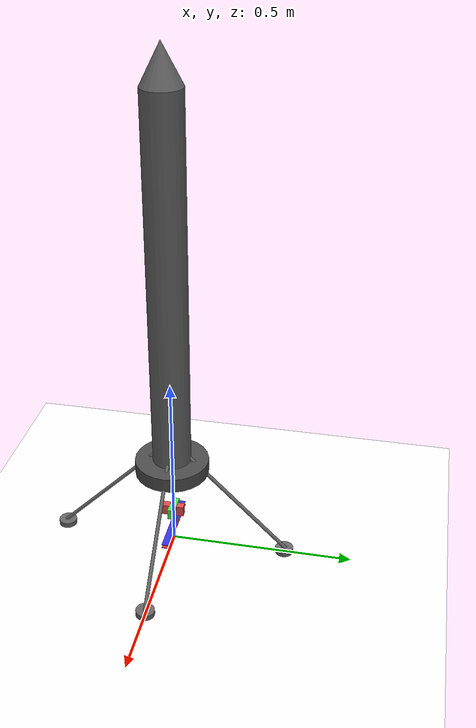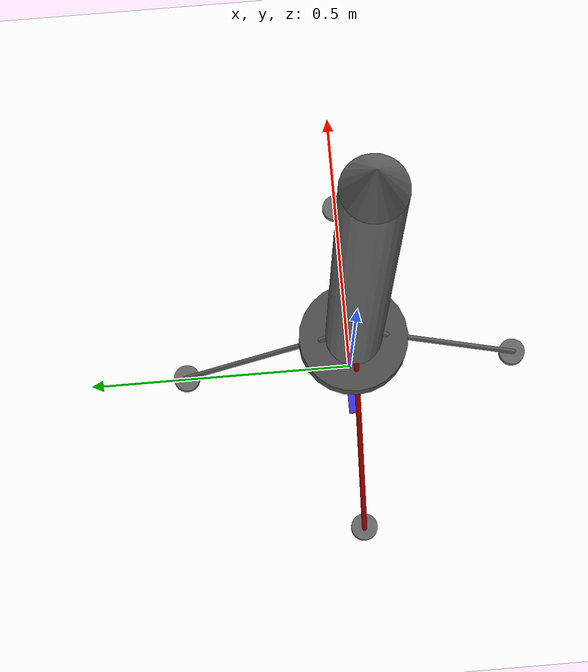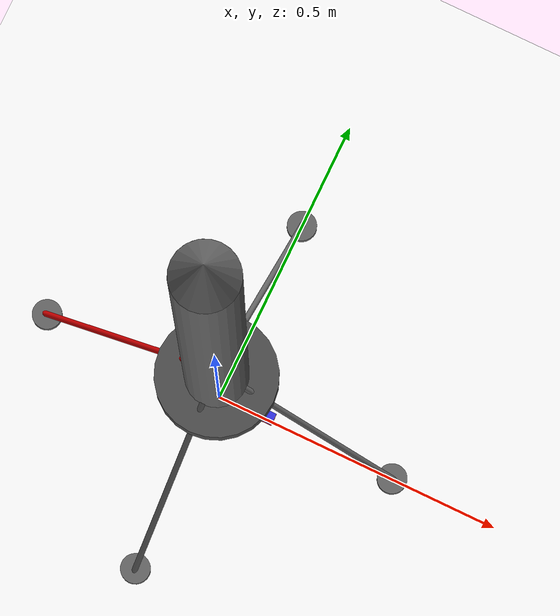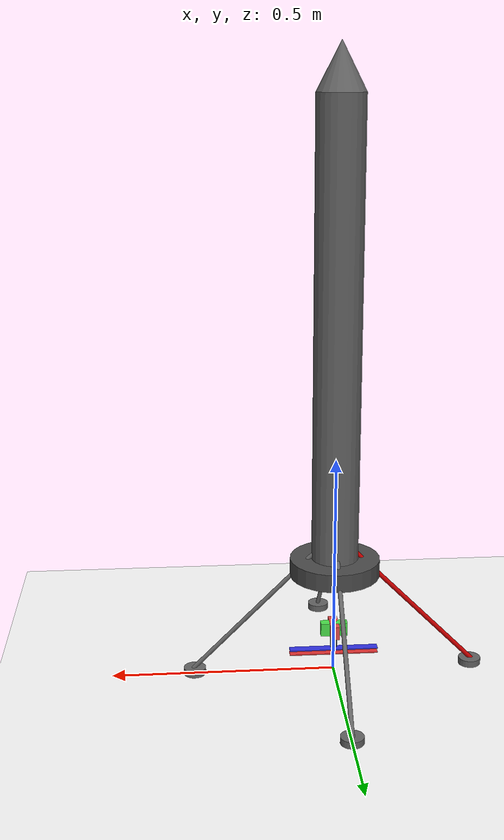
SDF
<?xml version='1.0'?>
<sdf version='1.11'>
  <world name='viper_world'>
    <!-- Inline static ground plane so the world does not depend on external models -->
    <model name='ground_plane_inline'>
      <static>true</static>
      <link name='ground_link'>
        <pose>0 0 0 0 0 0</pose>
        <collision name='ground_collision'>
          <geometry>
            <plane>
              <normal>0 0 1</normal>
              <size>100 100</size>
            </plane>
          </geometry>
        </collision>
        <visual name='ground_visual'>
          <geometry>
            <plane>
              <normal>0 0 1</normal>
              <size>100 100</size>
            </plane>
          </geometry>
          <material>
            <ambient>1 1 1 1</ambient>
            <diffuse>1 1 1 1</diffuse>
          </material>
        </visual>
      </link>
    </model>

    <!-- Include the local viper model by absolute file URI. Update this path if your workspace moves. -->
    <include>
      <uri>file:///home/nk/workspace/nautilus/PX4v1.16.0/Tools/simulation/gz/models/viper/model.sdf</uri>
    </include>

    <!-- World gravity should be set on the world, not inside the physics block -->
    <gravity>0 0 -9.81</gravity>
    <physics name='default_physics' type='ode'/>
  </world>
</sdf>

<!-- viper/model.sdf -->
<sdf version="1.11">
  <model name="viper">
    <link name="base_link">
      <pose>0 0 0.7725 0 0 0</pose>
      <inertial>
        <mass>0.8</mass>
        <pose>0 0 0 0 0 0</pose>
        <inertia>
          <ixx>0.042</ixx>
          <iyy>0.042</iyy>
          <izz>0.0001</izz>
          <ixy>0</ixy>
          <ixz>0</ixz>
          <iyz>0</iyz>
        </inertia>
      </inertial>

      <visual name="body_visual">
        <geometry>
          <cylinder>
            <radius>0.052</radius>
            <length>1.0</length>
          </cylinder>
        </geometry>
        <material>
          <ambient>0.2 0.2 0.2 1</ambient>
          <diffuse>0.4 0.4 0.4 1</diffuse>
          <specular>0.1 0.1 0.1 1</specular>
        </material>
      </visual>

      <collision name="body_collision">
        <geometry>
          <cylinder>
            <radius>0.052</radius>
            <length>1.0</length>
          </cylinder>
        </geometry>
      </collision>

      <sensor name="imu_sensor" type="imu">
        <always_on>1</always_on>
        <update_rate>250</update_rate>
        <pose>0 0 0 0 0 0</pose>
        <visualize>1</visualize>
        <imu>
          <angular_velocity>
            <x>
              <noise type="gaussian">
                <mean>0</mean>
                <stddev>0.0001</stddev>
                <dynamic_bias_stddev>1e-05</dynamic_bias_stddev>
                <dynamic_bias_correlation_time>1000</dynamic_bias_correlation_time>
              </noise>
            </x>
            <y>
              <noise type="gaussian">
                <mean>0</mean>
                <stddev>0.0001</stddev>
                <dynamic_bias_stddev>1e-05</dynamic_bias_stddev>
                <dynamic_bias_correlation_time>1000</dynamic_bias_correlation_time>
              </noise>
            </y>
            <z>
              <noise type="gaussian">
                <mean>0</mean>
                <stddev>0.00001</stddev>
                <dynamic_bias_stddev>1e-05</dynamic_bias_stddev>
                <dynamic_bias_correlation_time>1000</dynamic_bias_correlation_time>
              </noise>
            </z>
          </angular_velocity>
          <linear_acceleration>
            <x>
              <noise type="gaussian">
                <mean>0</mean>
                <stddev>0.001</stddev>
                <dynamic_bias_stddev>0.001</dynamic_bias_stddev>
                <dynamic_bias_correlation_time>300</dynamic_bias_correlation_time>
              </noise>
            </x>
            <y>
              <noise type="gaussian">
                <mean>0</mean>
                <stddev>0.001</stddev>
                <dynamic_bias_stddev>0.001</dynamic_bias_stddev>
                <dynamic_bias_correlation_time>300</dynamic_bias_correlation_time>
              </noise>
            </y>
            <z>
              <noise type="gaussian">
                <mean>0</mean>
                <stddev>0.0001</stddev>
                <dynamic_bias_stddev>0.0001</dynamic_bias_stddev>
                <dynamic_bias_correlation_time>300</dynamic_bias_correlation_time>
              </noise>
            </z>
          </linear_acceleration>
        </imu>
      </sensor>

      <sensor name="air_pressure_sensor" type="air_pressure">
        <always_on>1</always_on>
        <update_rate>50</update_rate>
        <air_pressure>
          <pressure>
            <noise type="gaussian">
              <mean>0</mean>
              <stddev>0.01</stddev>
            </noise>
          </pressure>
        </air_pressure>
      </sensor>

      <sensor name="navsat_sensor" type="navsat">
        <always_on>1</always_on>
        <update_rate>30</update_rate>
      </sensor>

    </link>

    <link name="top_cone">
      <pose>0 0 1.3225 0 0 0</pose>
      <inertial>
        <mass>0.01</mass>
        <inertia>
          <ixx>1e-5</ixx>
          <iyy>1e-5</iyy>
          <izz>1e-5</izz>
          <ixy>0</ixy>
          <ixz>0</ixz>
          <iyz>0</iyz>
        </inertia>
      </inertial>

      <visual name="top_cone_visual">
        <geometry>
          <cone>
            <radius>0.052</radius>
            <length>0.1</length>
          </cone>
        </geometry>
        <material>
          <ambient>0.2 0.2 0.2 1</ambient>
          <diffuse>0.4 0.4 0.4 1</diffuse>
        </material>
      </visual>

      <collision name="top_cone_collision">
        <geometry>
          <cone>
            <radius>0.052</radius>
            <length>0.1</length>
          </cone>
        </geometry>
      </collision>
    </link>

    <link name="gimbal_mount">
      <pose>0 0 0.2525 0 0 0</pose>
      <inertial>
        <mass>0.005</mass>
        <inertia>
          <ixx>1e-5</ixx>
          <iyy>1e-5</iyy>
          <izz>1e-5</izz>
          <ixy>0</ixy>
          <ixz>0</ixz>
          <iyz>0</iyz>
        </inertia>
      </inertial>

      <visual name="gimbal_mount_visual">
        <geometry>
          <cylinder>
            <radius>0.10</radius>
            <length>0.04</length>
          </cylinder>
        </geometry>
        <material>
          <ambient>0.1 0.1 0.1 1</ambient>
          <diffuse>0.3 0.3 0.3 1</diffuse>
        </material>
      </visual>

      <collision name="gimbal_mount_collision">
        <geometry>
          <cylinder>
            <radius>0.10</radius>
            <length>0.04</length>
          </cylinder>
        </geometry>
      </collision>
    </link>

    <link name="servo0_roll">
      <pose>0 0 0.1 0 0 0</pose>
      <inertial>
        <mass>0.003</mass>
        <inertia>
          <ixx>1e-5</ixx>
          <iyy>1e-5</iyy>
          <izz>1e-5</izz>
          <ixy>0</ixy>
          <ixz>0</ixz>
          <iyz>0</iyz>
        </inertia>
      </inertial>

      <visual name="servo0_roll_visual">
        <geometry>
          <box>
            <size>0.02 0.06 0.03</size>
          </box>
        </geometry>
        <material>
          <ambient>0.8 0.2 0.2 1</ambient>
          <diffuse>0.9 0.3 0.3 1</diffuse>
        </material>
      </visual>

      <collision name="servo0_roll_collision">
        <geometry>
          <box>
            <size>0.02 0.06 0.03</size>
          </box>
        </geometry>
      </collision>
    </link>

    <link name="servo1_pitch">
      <pose>0 0 0.1 0 0 0</pose>
      <inertial>
        <mass>0.003</mass>
        <inertia>
          <ixx>1e-5</ixx>
          <iyy>1e-5</iyy>
          <izz>1e-5</izz>
          <ixy>0</ixy>
          <ixz>0</ixz>
          <iyz>0</iyz>
        </inertia>
      </inertial>

      <visual name="servo1_pitch_visual">
        <geometry>
          <box>
            <size>0.06 0.02 0.03</size>
          </box>
        </geometry>
        <material>
          <ambient>0.2 0.8 0.2 1</ambient>
          <diffuse>0.3 0.9 0.3 1</diffuse>
        </material>
      </visual>

      <collision name="servo1_pitch_collision">
        <geometry>
          <box>
            <size>0.06 0.02 0.03</size>
          </box>
        </geometry>
      </collision>
    </link>

    <link name="motor_housing">
      <pose>0 0 0.075 0 0 0</pose>
      <inertial>
        <mass>0.01</mass>
        <inertia>
          <ixx>1e-5</ixx>
          <iyy>1e-5</iyy>
          <izz>1e-5</izz>
          <ixy>0</ixy>
          <ixz>0</ixz>
          <iyz>0</iyz>
        </inertia>
      </inertial>

      <visual name="motor_housing_visual">
        <geometry>
          <cylinder>
            <radius>0.008</radius>
            <length>0.04</length>
          </cylinder>
        </geometry>
        <material>
          <ambient>0.1 0.1 0.1 1</ambient>
          <diffuse>0.2 0.2 0.2 1</diffuse>
        </material>
      </visual>

      <collision name="motor_housing_collision">
        <geometry>
          <cylinder>
            <radius>0.008</radius>
            <length>0.04</length>
          </cylinder>
        </geometry>
      </collision>
    </link>

    <link name="prop_upper">
      <pose>0 0 0.05 0 0 0</pose>
      <inertial>
        <mass>0.001</mass>
        <inertia>
          <ixx>1e-5</ixx>
          <iyy>1e-4</iyy>
          <izz>1e-4</izz>
          <ixy>0</ixy>
          <ixz>0</ixz>
          <iyz>0</iyz>
        </inertia>
      </inertial>

      <visual name="prop_upper_visual">
        <geometry>
          <box>
            <size>0.2 0.02 0.002</size>
          </box>
        </geometry>
        <material>
          <ambient>0.1 0.1 0.8 1</ambient>
          <diffuse>0.2 0.2 0.9 1</diffuse>
        </material>
      </visual>

      <collision name="prop_upper_collision">
        <geometry>
          <box>
            <size>0.2 0.02 0.002</size>
          </box>
        </geometry>
      </collision>
    </link>

    <link name="prop_lower">
      <pose>0 0 0.04 0 0 0</pose>
      <inertial>
        <mass>0.001</mass>
        <inertia>
          <ixx>1e-5</ixx>
          <iyy>1e-4</iyy>
          <izz>1e-4</izz>
          <ixy>0</ixy>
          <ixz>0</ixz>
          <iyz>0</iyz>
        </inertia>
      </inertial>

      <visual name="prop_lower_visual">
        <geometry>
          <box>
            <size>0.2 0.02 0.002</size>
          </box>
        </geometry>
        <material>
          <ambient>0.8 0.1 0.1 1</ambient>
          <diffuse>0.9 0.2 0.2 1</diffuse>
        </material>
      </visual>

      <collision name="prop_lower_collision">
        <geometry>
          <box>
            <size>0.2 0.02 0.002</size>
          </box>
        </geometry>
      </collision>
    </link>

    <link name="landing_leg_1">
      <pose>0.18 0 0.1509 0 -0.78539816339 0</pose>
      <inertial>
        <mass>0.005</mass>
        <inertia>
          <ixx>1e-6</ixx>
          <iyy>1e-6</iyy>
          <izz>1e-6</izz>
        </inertia>
      </inertial>
      <visual name="leg_1_visual">
        <geometry>
          <cylinder>
            <radius>0.005</radius>
            <length>0.4</length>
          </cylinder>
        </geometry>
        <material>
          <ambient>0.2 0.2 0.2 1</ambient>
          <diffuse>0.4 0.4 0.4 1</diffuse>
        </material>
      </visual>
      <collision name="leg_1_collision">
        <geometry>
          <cylinder>
            <radius>0.005</radius>
            <length>0.4</length>
          </cylinder>
        </geometry>
      </collision>
    </link>

    <link name="landing_leg_2">
      <pose>0 0.18 0.1509 0.78539816339 0 0</pose>
      <inertial>
        <mass>0.005</mass>
        <inertia>
          <ixx>1e-6</ixx>
          <iyy>1e-6</iyy>
          <izz>1e-6</izz>
        </inertia>
      </inertial>
      <visual name="leg_2_visual">
        <geometry>
          <cylinder>
            <radius>0.005</radius>
            <length>0.4</length>
          </cylinder>
        </geometry>
        <material>
          <ambient>0.2 0.2 0.2 1</ambient>
          <diffuse>0.4 0.4 0.4 1</diffuse>
        </material>
      </visual>
      <collision name="leg_2_collision">
        <geometry>
          <cylinder>
            <radius>0.005</radius>
            <length>0.4</length>
          </cylinder>
        </geometry>
      </collision>
    </link>

    <link name="landing_leg_3">
      <pose>-0.18 0 0.1509 0 0.78539816339 0</pose>
      <inertial>
        <mass>0.005</mass>
        <inertia>
          <ixx>1e-6</ixx>
          <iyy>1e-6</iyy>
          <izz>1e-6</izz>
        </inertia>
      </inertial>
      <visual name="leg_3_visual">
        <geometry>
          <cylinder>
            <radius>0.005</radius>
            <length>0.4</length>
          </cylinder>
        </geometry>
        <material>
          <ambient>0.2 0 0 1</ambient>
          <diffuse>0.8 0 0 1</diffuse>
        </material>
      </visual>
      <collision name="leg_3_collision">
        <geometry>
          <cylinder>
            <radius>0.005</radius>
            <length>0.4</length>
          </cylinder>
        </geometry>
      </collision>
    </link>

    <link name="landing_leg_4">
      <pose>0 -0.18 0.1509 -0.78539816339 0 0</pose>
      <inertial>
        <mass>0.005</mass>
        <inertia>
          <ixx>1e-6</ixx>
          <iyy>1e-6</iyy>
          <izz>1e-6</izz>
        </inertia>
      </inertial>
      <visual name="leg_4_visual">
        <geometry>
          <cylinder>
            <radius>0.005</radius>
            <length>0.4</length>
          </cylinder>
        </geometry>
        <material>
          <ambient>0.2 0.2 0.2 1</ambient>
          <diffuse>0.4 0.4 0.4 1</diffuse>
        </material>
      </visual>
      <collision name="leg_4_collision">
        <geometry>
          <cylinder>
            <radius>0.005</radius>
            <length>0.4</length>
          </cylinder>
        </geometry>
      </collision>
    </link>

    <!-- Landing leg bases -->
    <link name="landing_base_1">
      <pose>0.315 0 0.0075 0 0 0</pose>
      <inertial>
        <mass>0.001</mass>
        <inertia>
          <ixx>1e-6</ixx>
          <iyy>1e-6</iyy>
          <izz>1e-6</izz>
        </inertia>
      </inertial>
      <visual name="base_1_visual">
        <geometry>
          <cylinder>
            <radius>0.025</radius>
            <length>0.015</length>
          </cylinder>
        </geometry>
        <material>
          <ambient>0.2 0.2 0.2 1</ambient>
          <diffuse>0.4 0.4 0.4 1</diffuse>
        </material>
      </visual>
      <collision name="base_1_collision">
        <geometry>
          <cylinder>
            <radius>0.025</radius>
            <length>0.015</length>
          </cylinder>
        </geometry>
      </collision>
    </link>

    <link name="landing_base_2">
      <pose>0 0.315 0.0075 0 0 0</pose>
      <inertial>
        <mass>0.001</mass>
        <inertia>
          <ixx>1e-6</ixx>
          <iyy>1e-6</iyy>
          <izz>1e-6</izz>
        </inertia>
      </inertial>
      <visual name="base_2_visual">
        <geometry>
          <cylinder>
            <radius>0.025</radius>
            <length>0.015</length>
          </cylinder>
        </geometry>
        <material>
          <ambient>0.2 0.2 0.2 1</ambient>
          <diffuse>0.4 0.4 0.4 1</diffuse>
        </material>
      </visual>
      <collision name="base_2_collision">
        <geometry>
          <cylinder>
            <radius>0.025</radius>
            <length>0.015</length>
          </cylinder>
        </geometry>
      </collision>
    </link>

    <link name="landing_base_3">
      <pose>-0.315 0 0.0075 0 0 0</pose>
      <inertial>
        <mass>0.001</mass>
        <inertia>
          <ixx>1e-6</ixx>
          <iyy>1e-6</iyy>
          <izz>1e-6</izz>
        </inertia>
      </inertial>
      <visual name="base_3_visual">
        <geometry>
          <cylinder>
            <radius>0.025</radius>
            <length>0.015</length>
          </cylinder>
        </geometry>
        <material>
          <ambient>0.2 0.2 0.2 1</ambient>
          <diffuse>0.4 0.4 0.4 1</diffuse>
        </material>
      </visual>
      <collision name="base_3_collision">
        <geometry>
          <cylinder>
            <radius>0.025</radius>
            <length>0.015</length>
          </cylinder>
        </geometry>
      </collision>
    </link>

    <link name="landing_base_4">
      <pose>0 -0.315 0.0075 0 0 0</pose>
      <inertial>
        <mass>0.001</mass>
        <inertia>
          <ixx>1e-6</ixx>
          <iyy>1e-6</iyy>
          <izz>1e-6</izz>
        </inertia>
      </inertial>
      <visual name="base_4_visual">
        <geometry>
          <cylinder>
            <radius>0.025</radius>
            <length>0.015</length>
          </cylinder>
        </geometry>
        <material>
          <ambient>0.2 0.2 0.2 1</ambient>
          <diffuse>0.4 0.4 0.4 1</diffuse>
        </material>
      </visual>
      <collision name="base_4_collision">
        <geometry>
          <cylinder>
            <radius>0.025</radius>
            <length>0.015</length>
          </cylinder>
        </geometry>
      </collision>
    </link>

    <joint name="base_to_gimbal_mount" type="fixed">
      <parent>base_link</parent>
      <child>gimbal_mount</child>
    </joint>

    <joint name="top_cone_to_base" type="fixed">
      <parent>base_link</parent>
      <child>top_cone</child>
    </joint>

    <joint name="leg_1_joint" type="fixed">
      <parent>base_link</parent>
      <child>landing_leg_1</child>
    </joint>
    <joint name="leg_2_joint" type="fixed">
      <parent>base_link</parent>
      <child>landing_leg_2</child>
    </joint>
    <joint name="leg_3_joint" type="fixed">
      <parent>base_link</parent>
      <child>landing_leg_3</child>
    </joint>
    <joint name="leg_4_joint" type="fixed">
      <parent>base_link</parent>
      <child>landing_leg_4</child>
    </joint>

    <!-- Joints connecting legs to their bases -->
    <joint name="leg_1_to_base_1" type="fixed">
      <parent>landing_leg_1</parent>
      <child>landing_base_1</child>
    </joint>
    <joint name="leg_2_to_base_2" type="fixed">
      <parent>landing_leg_2</parent>
      <child>landing_base_2</child>
    </joint>
    <joint name="leg_3_to_base_3" type="fixed">
      <parent>landing_leg_3</parent>
      <child>landing_base_3</child>
    </joint>
    <joint name="leg_4_to_base_4" type="fixed">
      <parent>landing_leg_4</parent>
      <child>landing_base_4</child>
    </joint>

    <joint name="servo0_roll_joint" type="revolute">
      <parent>gimbal_mount</parent>
      <child>servo0_roll</child>
      <axis>
        <xyz>
        1 0 0
        </xyz>
        <limit>
          <lower>-1</lower>
          <upper>1</upper>
        </limit>
      </axis>
    </joint>

    <joint name="servo1_pitch_joint" type="revolute">
      <parent>servo0_roll</parent>
      <child>servo1_pitch</child>
      <axis>
        <xyz>
        0 -1 0
        </xyz>
        <limit>
          <lower>-1</lower>
          <upper>1</upper>
        </limit>
      </axis>
    </joint>

    <joint name="pitch_to_motor" type="fixed">
      <parent>servo1_pitch</parent>
      <child>motor_housing</child>
    </joint>

    <joint name="motor1_joint" type="revolute">
      <parent>motor_housing</parent>
      <child>prop_upper</child>
      <axis>
        <xyz>0 0 1</xyz>
        <limit>
        </limit>
        <dynamics>
          <damping>0.001</damping>
          <friction>0.0001</friction>
        </dynamics>
      </axis>
    </joint>

    <joint name="motor2_joint" type="revolute">
      <parent>motor_housing</parent>
      <child>prop_lower</child>
      <axis>
        <xyz>0 0 1</xyz>
        <limit>
        </limit>
        <dynamics>
          <damping>0.001</damping>
          <friction>0.0001</friction>
        </dynamics>
      </axis>
    </joint>

    <plugin filename="gz-sim-multicopter-motor-model-system"
            name="gz::sim::systems::MulticopterMotorModel">
      <jointName>motor1_joint</jointName>
      <linkName>prop_upper</linkName>
      <turningDirection>ccw</turningDirection>
      <timeConstantUp>0.0125</timeConstantUp>
      <timeConstantDown>0.025</timeConstantDown>
      <maxRotVelocity>1400</maxRotVelocity>
      <motorConstant>0.0000048449</motorConstant>
      <momentConstant>0.1</momentConstant>
      <commandSubTopic>command/motor_speed</commandSubTopic>
      <motorNumber>0</motorNumber>
      <rotorDragCoefficient>0.0000000806428</rotorDragCoefficient>
      <rollingMomentCoefficient>1e-06</rollingMomentCoefficient>
      <rotorVelocitySlowdownSim>20</rotorVelocitySlowdownSim>
      <motorType>velocity</motorType>
    </plugin>

    <plugin filename="gz-sim-multicopter-motor-model-system"
            name="gz::sim::systems::MulticopterMotorModel">
      <jointName>motor2_joint</jointName>
      <linkName>prop_lower</linkName>
      <turningDirection>cw</turningDirection>
      <timeConstantUp>0.0125</timeConstantUp>
      <timeConstantDown>0.025</timeConstantDown>
      <maxRotVelocity>1400</maxRotVelocity>
      <motorConstant>0.0000048449</motorConstant>
      <momentConstant>0.1</momentConstant>
      <commandSubTopic>command/motor_speed</commandSubTopic>
      <motorNumber>1</motorNumber>
      <rotorDragCoefficient>0.0000000806428</rotorDragCoefficient>
      <rollingMomentCoefficient>1e-06</rollingMomentCoefficient>
      <rotorVelocitySlowdownSim>20</rotorVelocitySlowdownSim>
      <motorType>velocity</motorType>
    </plugin>

    <plugin filename="gz-sim-joint-position-controller-system"
            name="gz::sim::systems::JointPositionController">
      <joint_name>servo1_pitch_joint</joint_name>
      <sub_topic>servo_pitch</sub_topic>
      <p_gain>1</p_gain>
    </plugin>

    <plugin filename="gz-sim-joint-position-controller-system"
            name="gz::sim::systems::JointPositionController">
      <joint_name>servo0_roll_joint</joint_name>
      <sub_topic>servo_roll</sub_topic>
      <p_gain>1</p_gain>
    </plugin>

    <plugin filename="libTVCPlugin.so" name="TVCPlugin">

      <dynamics_model>second_order</dynamics_model>

      <servo_max_speed>0.112</servo_max_speed>
      <servo_min_len>0.108</servo_min_len>
      <servo_max_len>0.135</servo_max_len>

      <servo_time_constant>0.2</servo_time_constant>

      <servo_natural_freq>37.07079327</servo_natural_freq>
      <servo_damping_ratio>0.95</servo_damping_ratio>

      <engine_link>motor_housing</engine_link>

      <input_mode>joint_position</input_mode>
      <input_format>normalized_minus1_1</input_format>

      <!-- Input Topics: From PX4-->
      <servo_0_topic>/model/viper_0/servo_0</servo_0_topic>
      <servo_1_topic>/model/viper_0/servo_1</servo_1_topic>

      <transport_topic>/tvc_servo_command</transport_topic>

      <!-- Angle output topics for JointPositionController -->
      <roll_angle_topic>/model/viper_0/servo_roll</roll_angle_topic>
      <pitch_angle_topic>/model/viper_0/servo_pitch</pitch_angle_topic>

      <gimbal_xB>0.06741</gimbal_xB>
      <gimbal_zB>0.0917</gimbal_zB>
      <gimbal_yE>0.06741</gimbal_yE>
      <gimbal_zE>0.0917</gimbal_zE>
      <gimbal_L4>0.0228</gimbal_L4>
      <gimbal_L5>0.028</gimbal_L5>
      <gimbal_L7>0.028</gimbal_L7>

      <!-- Servo calibration parameters (matches tvc_model.py) -->
      <!-- a3, a6: servo stroke per unit normalized input (meters) -->
      <!-- 13.5mm stroke = 0.0135m for ±1.0 normalized input -->
      <!-- p01, p02: neutral reference (normalized inputs, set to 0) -->

      <servo_a3>0.0135</servo_a3>
      <servo_a6>0.0135</servo_a6>
      <servo_p01>0.0</servo_p01>
      <servo_p02>0.0</servo_p02>

      <servo_L3_min>0.108</servo_L3_min>
      <servo_L3_max>0.135</servo_L3_max>
      <servo_L6_min>0.108</servo_L6_min>
      <servo_L6_max>0.135</servo_L6_max>
    </plugin>

    <plugin filename="libgz-sim-pose-publisher-system.so"
            name="gz::sim::systems::PosePublisher">
      <publish_world_pose>true</publish_world_pose>
      <publish_link_pose>true</publish_link_pose>
      <publish_collision_pose>false</publish_collision_pose>
      <publish_visual_pose>false</publish_visual_pose>
    </plugin>

    <plugin filename="gz-sim-odometry-publisher-system"
    name="gz::sim::systems::OdometryPublisher">
      <dimensions>3</dimensions>
    </plugin>

    <plugin filename="gz-sim-joint-state-publisher-system"
    name="gz::sim::systems::JointStatePublisher">
      <topic>gimbal_roll</topic>
      <joint_name>servo0_roll_joint</joint_name>
    </plugin>

    <plugin filename="gz-sim-joint-state-publisher-system"
    name="gz::sim::systems::JointStatePublisher">
      <topic>gimbal_pitch</topic>
      <joint_name>servo1_pitch_joint</joint_name>
    </plugin>

    <!-- With current gazebo harmonic and gz-sim, the below plugin is not available -->

  </model>
</sdf>
